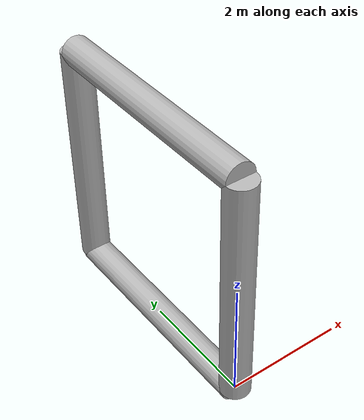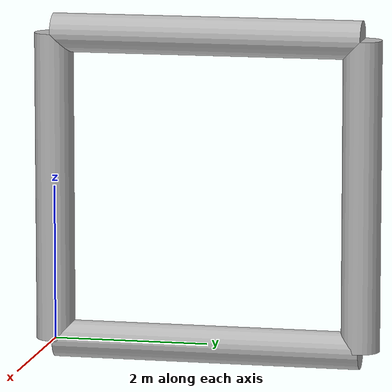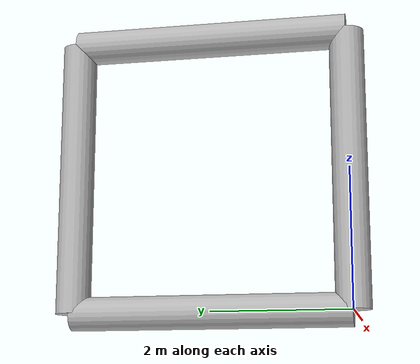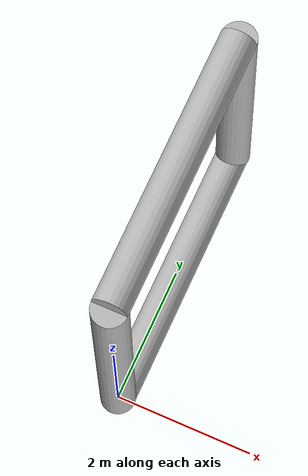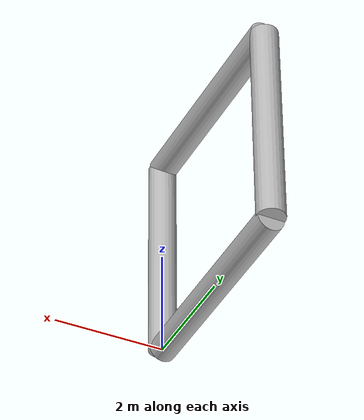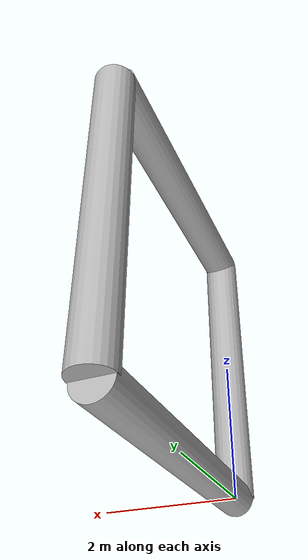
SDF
<?xml version='1.0'?>
<sdf version='1.6'>
		<model name="FourBarPlanarLinkage">
			<self_collide>true</self_collide>
			<pose>0.0 0.0 0.0 0.0 0.0 0.0</pose>
			<!-- Start of parts of the pmodel FourBarPlanarLinkage -->
			<!-- End of parts of the pmodel FourBarPlanarLinkage -->

			<!-- Start of links of the pmodel FourBarPlanarLinkage -->
			<!-- link full name is FourBarPlanarLinkage::Link1 -->
			<link name="1-Link1">
					<pose>0.0 0.0 2.0 0.0 0.0 0.0</pose>
					<inertial>
						<pose>0.0 0.0 0.0 0.0 0.0 0.0</pose>
						<inertia>
							<ixx>1.0</ixx>
							<ixy>0.0</ixy>
							<ixz>0.0</ixz>
							<iyy>1.0</iyy>
							<iyz>0.0</iyz>
							<izz>1.0</izz>
						</inertia>
						<mass>1.0</mass>
					</inertial>
					<!-- body full name is FourBarPlanarLinkage::Link1::Link1 -->
					<collision name="1--Link1">
						<laser_retro>0.0</laser_retro>
						<pose>0.0 0.0 0.0 0.0 0.0 0.0</pose>
						<geometry>
							<cylinder>
								<radius>0.25</radius>
								<length>4</length>
							</cylinder>
						</geometry>
						<surface>
							<bounce>
								<restitution_coefficient>0.0</restitution_coefficient>
								<threshold>100000.0</threshold>
							</bounce>
							<friction>
								<ode>
									<mu>1.0</mu>
									<mu2>1.0</mu2>
									<fdir1>0.0 0.0 0.0</fdir1>
									<slip1>0.0</slip1>
									<slip2>0.0</slip2>
								</ode>
								<torsional>
									<coefficient>1.0</coefficient>
									<surface_radius>0.0</surface_radius>
								</torsional>
							</friction>
						</surface>
					</collision>
					<visual name="1--Link1">
						<laser_retro>0.0</laser_retro>
						<pose>0.0 0.0 0.0 0.0 0.0 0.0</pose>
						<geometry>
							<cylinder>
								<radius>0.25</radius>
								<length>4</length>
							</cylinder>
						</geometry>
					</visual>
			</link>
			<!-- link full name is FourBarPlanarLinkage::Link2 -->
			<link name="2-Link2">
					<pose>0.0 2.0 4.0 1.5700000524520874 0.0 0.0</pose>
					<inertial>
						<pose>0.0 0.0 0.0 0.0 0.0 0.0</pose>
						<inertia>
							<ixx>1.0</ixx>
							<ixy>0.0</ixy>
							<ixz>0.0</ixz>
							<iyy>1.0</iyy>
							<iyz>0.0</iyz>
							<izz>1.0</izz>
						</inertia>
						<mass>1.0</mass>
					</inertial>
					<!-- body full name is FourBarPlanarLinkage::Link2::Link2 -->
					<collision name="2--Link2">
						<laser_retro>0.0</laser_retro>
						<pose>0.0 0.0 0.0 0.0 0.0 0.0</pose>
						<geometry>
							<cylinder>
								<radius>0.25</radius>
								<length>4</length>
							</cylinder>
						</geometry>
						<surface>
							<bounce>
								<restitution_coefficient>0.0</restitution_coefficient>
								<threshold>100000.0</threshold>
							</bounce>
							<friction>
								<ode>
									<mu>1.0</mu>
									<mu2>1.0</mu2>
									<fdir1>0.0 0.0 0.0</fdir1>
									<slip1>0.0</slip1>
									<slip2>0.0</slip2>
								</ode>
								<torsional>
									<coefficient>1.0</coefficient>
									<surface_radius>0.0</surface_radius>
								</torsional>
							</friction>
						</surface>
					</collision>
					<visual name="2--Link2">
						<laser_retro>0.0</laser_retro>
						<pose>0.0 0.0 0.0 0.0 0.0 0.0</pose>
						<geometry>
							<cylinder>
								<radius>0.25</radius>
								<length>4</length>
							</cylinder>
						</geometry>
					</visual>
			</link>
			<!-- link full name is FourBarPlanarLinkage::Link3 -->
			<link name="3-Link3">
					<pose>0.0 4.0 2.0 0.0 0.0 0.0</pose>
					<inertial>
						<pose>0.0 0.0 0.0 0.0 0.0 0.0</pose>
						<inertia>
							<ixx>1.0</ixx>
							<ixy>0.0</ixy>
							<ixz>0.0</ixz>
							<iyy>1.0</iyy>
							<iyz>0.0</iyz>
							<izz>1.0</izz>
						</inertia>
						<mass>1.0</mass>
					</inertial>
					<!-- body full name is FourBarPlanarLinkage::Link3::Link3 -->
					<collision name="3--Link3">
						<laser_retro>0.0</laser_retro>
						<pose>0.0 0.0 0.0 0.0 0.0 0.0</pose>
						<geometry>
							<cylinder>
								<radius>0.25</radius>
								<length>4</length>
							</cylinder>
						</geometry>
						<surface>
							<bounce>
								<restitution_coefficient>0.0</restitution_coefficient>
								<threshold>100000.0</threshold>
							</bounce>
							<friction>
								<ode>
									<mu>1.0</mu>
									<mu2>1.0</mu2>
									<fdir1>0.0 0.0 0.0</fdir1>
									<slip1>0.0</slip1>
									<slip2>0.0</slip2>
								</ode>
								<torsional>
									<coefficient>1.0</coefficient>
									<surface_radius>0.0</surface_radius>
								</torsional>
							</friction>
						</surface>
					</collision>
					<visual name="3--Link3">
						<laser_retro>0.0</laser_retro>
						<pose>0.0 0.0 0.0 0.0 0.0 0.0</pose>
						<geometry>
							<cylinder>
								<radius>0.25</radius>
								<length>4</length>
							</cylinder>
						</geometry>
					</visual>
			</link>
			<!-- link full name is FourBarPlanarLinkage::Link4 -->
			<link name="4-Link4">
					<pose>0.0 2.0 0.0 1.5700000524520874 0.0 0.0</pose>
					<inertial>
						<pose>0.0 0.0 0.0 0.0 0.0 0.0</pose>
						<inertia>
							<ixx>1.0</ixx>
							<ixy>0.0</ixy>
							<ixz>0.0</ixz>
							<iyy>1.0</iyy>
							<iyz>0.0</iyz>
							<izz>1.0</izz>
						</inertia>
						<mass>1.0</mass>
					</inertial>
					<!-- body full name is FourBarPlanarLinkage::Link4::Link4 -->
					<collision name="4--Link4">
						<laser_retro>0.0</laser_retro>
						<pose>0.0 0.0 0.0 0.0 0.0 0.0</pose>
						<geometry>
							<cylinder>
								<radius>0.23999999463558197</radius>
								<length>4</length>
							</cylinder>
						</geometry>
						<surface>
							<bounce>
								<restitution_coefficient>0.0</restitution_coefficient>
								<threshold>100000.0</threshold>
							</bounce>
							<friction>
								<ode>
									<mu>1.0</mu>
									<mu2>1.0</mu2>
									<fdir1>0.0 0.0 0.0</fdir1>
									<slip1>0.0</slip1>
									<slip2>0.0</slip2>
								</ode>
								<torsional>
									<coefficient>1.0</coefficient>
									<surface_radius>0.0</surface_radius>
								</torsional>
							</friction>
						</surface>
					</collision>
					<visual name="4--Link4">
						<laser_retro>0.0</laser_retro>
						<pose>0.0 0.0 0.0 0.0 0.0 0.0</pose>
						<geometry>
							<cylinder>
								<radius>0.23999999463558197</radius>
								<length>4</length>
							</cylinder>
						</geometry>
					</visual>
			</link>
			<!-- End of links of the pmodel FourBarPlanarLinkage -->

			<!-- Start of joints of the pmodel FourBarPlanarLinkage -->
			<!-- Full name of joint: FourBarPlanarLinkage::Link1::Link1Joint from FourBarPlanarLinkage::Link1 to FourBarPlanarLinkage::Link2-->
			<joint name="5-Link1Joint" type="revolute">
				<pose>0.0 -2.0015919144645298 1.9984068174298792 -1.5700000524520874 -0.0 0.0</pose>
				<parent>1-Link1</parent>
				<child>2-Link2</child>
				<!-- WARNING: The SDF generator relies on annotations of the joint 5-Link1Joint to specify in SDF aspects of the joint that are
					 accounted for in the equations. -->
				<axis>
					<xyz>1 0 0</xyz>
					<dynamics>
						<damping>0</damping>
						<friction>0</friction>
						<spring_reference>0</spring_reference>
						<spring_stiffness>0</spring_stiffness>
					</dynamics>
					<limit>
						<lower>-1.5707963705062866</lower>
						<upper>1.5707963705062866</upper>
						<velocity>5</velocity>
					</limit>
				</axis>
			</joint>
			<!-- Full name of joint: FourBarPlanarLinkage::Link2::Link2Joint from FourBarPlanarLinkage::Link2 to FourBarPlanarLinkage::Link3-->
			<joint name="6-Link2Joint" type="revolute">
				<pose>0.0 -3.9999993659472044 2.0015925485173254 1.5700000524520874 -0.0 0.0</pose>
				<parent>2-Link2</parent>
				<child>3-Link3</child>
				<!-- WARNING: The SDF generator relies on annotations of the joint 6-Link2Joint to specify in SDF aspects of the joint that are
					 accounted for in the equations. -->
				<axis>
					<xyz>0 0 1</xyz>
					<dynamics>
						<damping>0</damping>
						<friction>0</friction>
						<spring_reference>0</spring_reference>
						<spring_stiffness>0</spring_stiffness>
					</dynamics>
					<limit>
						<lower>-6.2831854820251465</lower>
						<upper>6.2831854820251465</upper>
						<velocity>5</velocity>
					</limit>
				</axis>
			</joint>
			<!-- Full name of joint: FourBarPlanarLinkage::Link4::Link4Joint from FourBarPlanarLinkage::Link4 to FourBarPlanarLinkage::Link1-->
			<joint name="7-Link4Joint" type="revolute">
				<pose>0.0 2.0 -2.0 1.5700000524520874 -0.0 0.0</pose>
				<parent>4-Link4</parent>
				<child>1-Link1</child>
				<!-- WARNING: The SDF generator relies on annotations of the joint 7-Link4Joint to specify in SDF aspects of the joint that are
					 accounted for in the equations. -->
				<axis>
					<xyz>1 0 0</xyz>
					<dynamics>
						<damping>0</damping>
						<friction>0</friction>
						<spring_reference>0</spring_reference>
						<spring_stiffness>0</spring_stiffness>
					</dynamics>
					<limit>
						<lower>-1.5707963705062866</lower>
						<upper>1.5707963705062866</upper>
						<velocity>5</velocity>
					</limit>
				</axis>
			</joint>
			<!-- Full name of joint: FourBarPlanarLinkage::Link3::Link3Joint from FourBarPlanarLinkage::Link3 to FourBarPlanarLinkage::Link4-->
			<joint name="8-Link3Joint" type="revolute">
				<pose>0.0 2.0015919144645298 -1.9984068174298795 -1.5700000524520874 -0.0 0.0</pose>
				<parent>3-Link3</parent>
				<child>4-Link4</child>
				<!-- WARNING: The SDF generator relies on annotations of the joint 8-Link3Joint to specify in SDF aspects of the joint that are
					 accounted for in the equations. -->
				<axis>
					<xyz>1 0 0</xyz>
					<dynamics>
						<damping>0</damping>
						<friction>0</friction>
						<spring_reference>0</spring_reference>
						<spring_stiffness>0</spring_stiffness>
					</dynamics>
					<limit>
						<lower>-1.5707963705062866</lower>
						<upper>1.5707963705062866</upper>
						<velocity>5</velocity>
					</limit>
				</axis>
			</joint>
			<!-- End of joints of the pmodel FourBarPlanarLinkage -->

			<!-- Start of fixed connections of the pmodel FourBarPlanarLinkage -->
			<!-- End of fixed connections of the pmodel FourBarPlanarLinkage -->
		</model>
</sdf>
